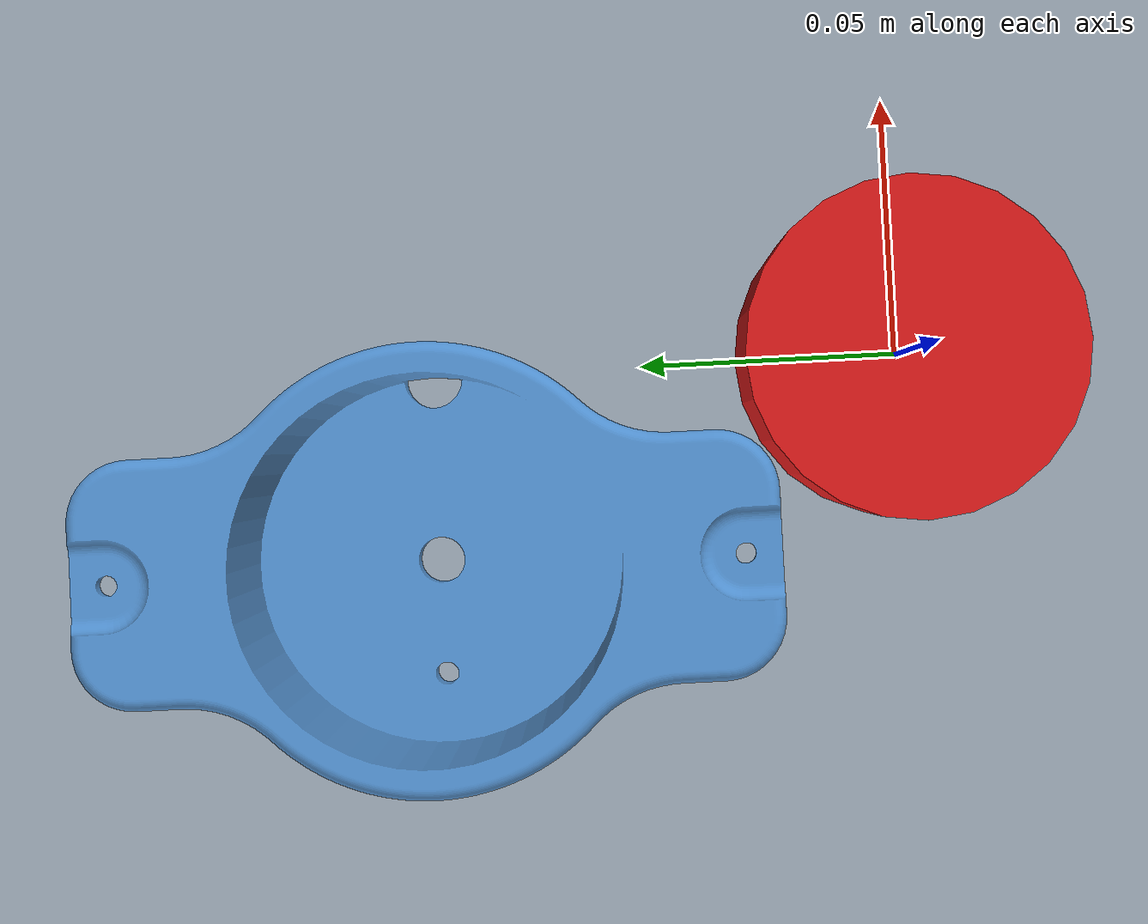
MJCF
<?xml version="1.0" encoding="utf-8"?>
<mujoco model="magnet_wrench_test">
  <compiler angle="radian" autolimits="true" />

  <asset>
    <texture name="grid" type="2d" builtin="checker" width="512" height="512"
             rgb1="0.9 0.9 0.9" rgb2="0.7 0.7 0.7"/>
    <material name="grid" texture="grid" texrepeat="5 5" reflectance="0.2"/>
    <texture name="skybox" type="skybox" builtin="gradient"
             rgb1="0.8 0.85 0.9" rgb2="0.95 0.95 0.95" width="512" height="512"/>
    <mesh name="magnet_bracket" file="1102_PF_Magnet_Bracket.STL" scale="0.001 0.001 0.001"/>
  </asset>

  <option timestep="0.001" integrator="implicit" gravity="0 0 -9.81" />

  <default>
    <geom condim="6" contype="1" conaffinity="1" friction="0.8 0.1 0.1" rgba="0.7 0.7 0.7 1" />
  </default>

  <worldbody>
    <geom name="floor" type="plane" size="1 1 0.01" material="grid"
          pos="0 0 -0.015" contype="0" conaffinity="0"/>

    <!-- Plate lies flat: top surface at z=0 -->
    <body name="plate" pos="0 0 0">
      <geom name="plate_geom" type="box" pos="0 0 -0.005" size="0.25 0.25 0.005"
            rgba="0.6 0.65 0.7 1" />
    </body>

    <!-- Magnet + stick assembly: freejoint for full 6-DOF motion -->
    <!-- Body origin at z=0.0170 (housing half-height), magnet offset -0.0025 so bottom face flush at z=0 -->
    <body name="magnet" pos="0 0 0.0170">
      <freejoint name="magnet_free"/>

      <!-- Magnet: r=31.5mm, half-height=14.5mm, offset -2.5mm so bottom face flush with plate -->
      <geom name="magnet_cyl" type="cylinder" size="0.0315 0.0145"
            pos="0 0 -0.0025" rgba="0.85 0.1 0.1 1" density="7850" />

      <!-- STL bracket mesh — non-colliding until position verified -->
      <!-- euler: 180deg=3.141593 rad, 90deg=1.570796 rad, 0deg=0.0 rad -->
      <geom name="bracket" type="mesh" mesh="magnet_bracket"
            rgba="0.3 0.6 0.9 0.8" density="2700"
            euler="-3.141593 1.570796 -1.570796"
            pos="-0.07 0.03 0.018"
            />

      <!-- Sampling spheres (3 rings x 8 pts = 24). Non-colliding. -->
      <!-- Bottom ring (z=-0.0105): closest to plate -->
      <geom type="sphere" size="0.002" pos=" 0.028500  0.000000 -0.017000" contype="0" conaffinity="0" mass="1e-6" rgba="0 0 1 1"/>
      <geom type="sphere" size="0.002" pos=" 0.020152  0.020152 -0.017000" contype="0" conaffinity="0" mass="1e-6" rgba="0 0 1 1"/>
      <geom type="sphere" size="0.002" pos=" 0.000000  0.028500 -0.017000" contype="0" conaffinity="0" mass="1e-6" rgba="0 0 1 1"/>
      <geom type="sphere" size="0.002" pos="-0.020152  0.020152 -0.017000" contype="0" conaffinity="0" mass="1e-6" rgba="0 0 1 1"/>
      <geom type="sphere" size="0.002" pos="-0.028500  0.000000 -0.017000" contype="0" conaffinity="0" mass="1e-6" rgba="0 0 1 1"/>
      <geom type="sphere" size="0.002" pos="-0.020152 -0.020152 -0.017000" contype="0" conaffinity="0" mass="1e-6" rgba="0 0 1 1"/>
      <geom type="sphere" size="0.002" pos=" 0.000000 -0.028500 -0.017000" contype="0" conaffinity="0" mass="1e-6" rgba="0 0 1 1"/>
      <geom type="sphere" size="0.002" pos=" 0.020152 -0.020152 -0.017000" contype="0" conaffinity="0" mass="1e-6" rgba="0 0 1 1"/>
      <!-- Middle ring (z=0) -->
      <!-- Top ring (z=+0.0105) -->
    </body>
  </worldbody>
</mujoco>
